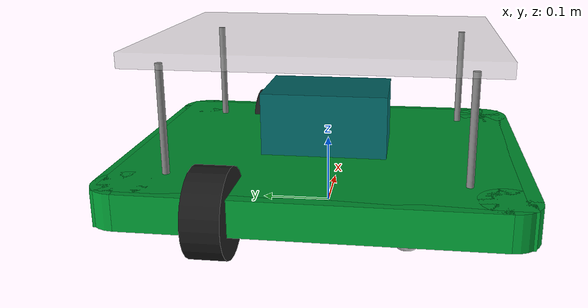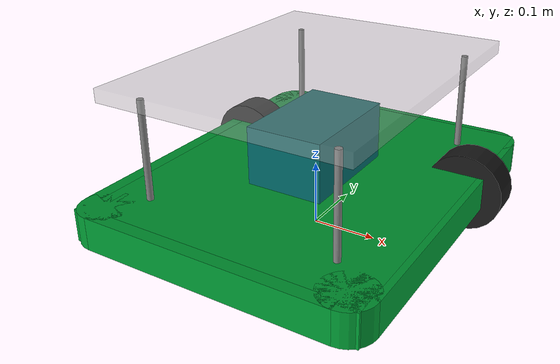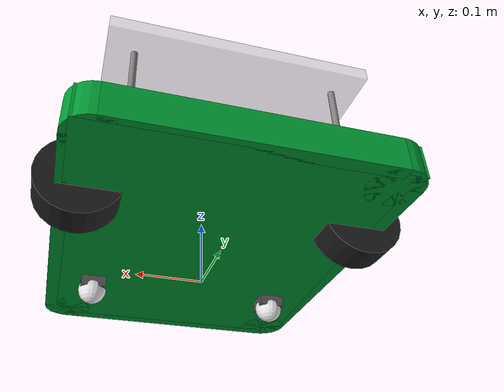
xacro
<?xml version="1.0"?>
<robot xmlns:xacro="http://www.ros.org/wiki/xacro" name="custom_robot">

  <xacro:include filename="$(find robot_simulation)/urdf/materials.xacro"/>
  <xacro:include filename="$(find robot_simulation)/urdf/robot_core.xacro"/>
  <xacro:include filename="$(find robot_simulation)/urdf/ros2_control.xacro"/>
  <xacro:include filename="$(find robot_simulation)/urdf/gazebo.xacro"/>

  <xacro:ros2_control/>
  <xacro:gazebo_plugins/>

</robot>

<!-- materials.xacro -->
<robot xmlns:xacro="http://www.ros.org/wiki/xacro">
  <material name="black">
    <color rgba="0.1 0.1 0.1 1.0"/>
  </material>
  <material name="white">
    <color rgba="0.9 0.9 0.9 1.0"/>
  </material>
  <material name="blue">
    <color rgba="0.0 0.2 0.8 1.0"/>
  </material>
  <material name="grey">
    <color rgba="0.5 0.5 0.5 1.0"/>
  </material>
  <material name="dark_grey">
    <color rgba="0.3 0.3 0.3 1.0"/>
  </material>
  <material name="green">
    <color rgba="0.0 0.6 0.2 1.0"/>
  </material>
  <material name="transparent">
    <color rgba="0.7 0.7 0.7 0.4"/>
  </material>
  <material name="battery_green">
    <color rgba="0.0 0.4 0.4 1.0"/>
  </material>
</robot>

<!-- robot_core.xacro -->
<robot xmlns:xacro="http://www.ros.org/wiki/xacro">

  <!-- Dimensions -->
  <xacro:property name="wheel_radius" value="0.06"/>
  <xacro:property name="wheel_width" value="0.05"/>
  <xacro:property name="wheel_track" value="0.40"/>    <!-- 40cm - ngang, truc X -->
  <xacro:property name="wheelbase" value="0.245"/>      <!-- 24.5cm - doc, truc Y -->
  <xacro:property name="caster_radius" value="0.0225"/>
  <xacro:property name="caster_track" value="0.31"/>    <!-- 31cm - ngang, truc X -->

  <xacro:property name="chassis_length" value="0.57"/>  <!-- 57cm - DOC, truc Y -->
  <xacro:property name="chassis_width" value="0.46"/>    <!-- 46cm - NGANG, truc X -->
  <xacro:property name="chassis_height" value="0.05"/>
  <xacro:property name="ground_clearance" value="0.04"/>
  <xacro:property name="equipment_height" value="0.26"/>
  <xacro:property name="corner_radius" value="0.04"/>

  <!-- Masses -->
  <xacro:property name="chassis_mass" value="5.0"/>
  <xacro:property name="wheel_mass" value="0.5"/>
  <xacro:property name="caster_mass" value="0.2"/>
  <xacro:property name="plate_mass" value="0.3"/>

  <!-- Inertia macros -->
  <xacro:macro name="box_inertia" params="m w h d">
    <inertial>
      <mass value="${m}"/>
      <inertia ixx="${m*(h*h + d*d)/12}" ixy="0.0" ixz="0.0"
               iyy="${m*(w*w + d*d)/12}" iyz="0.0"
               izz="${m*(w*w + h*h)/12}"/>
    </inertial>
  </xacro:macro>

  <xacro:macro name="cylinder_inertia" params="m r h">
    <inertial>
      <mass value="${m}"/>
      <inertia ixx="${m*(3*r*r + h*h)/12}" ixy="0.0" ixz="0.0"
               iyy="${m*(3*r*r + h*h)/12}" iyz="0.0"
               izz="${m*r*r/2}"/>
    </inertial>
  </xacro:macro>

  <xacro:macro name="sphere_inertia" params="m r">
    <inertial>
      <mass value="${m}"/>
      <inertia ixx="${2*m*r*r/5}" ixy="0.0" ixz="0.0"
               iyy="${2*m*r*r/5}" iyz="0.0"
               izz="${2*m*r*r/5}"/>
    </inertial>
  </xacro:macro>

  <!-- ================= BASE LINK ================= -->
  <!--
    Khung xe: chieu dai (57cm) theo truc Y, chieu rong (46cm) theo truc X
    4 goc bo tron
  -->
  <link name="base_link">

    <!-- THANH NGANG (truc X) - 2 thanh o trai va phai -->
    <!-- Thanh phai (+X) -->
    <visual>
      <origin xyz="${chassis_width/2 - 0.01} 0 ${ground_clearance + chassis_height/2}" rpy="0 0 0"/>
      <geometry>
        <box size="0.02 ${chassis_length - 2*corner_radius} ${chassis_height}"/>
      </geometry>
      <material name="green"/>
    </visual>
    <collision>
      <origin xyz="${chassis_width/2 - 0.01} 0 ${ground_clearance + chassis_height/2}" rpy="0 0 0"/>
      <geometry>
        <box size="0.02 ${chassis_length - 2*corner_radius} ${chassis_height}"/>
      </geometry>
    </collision>

    <!-- Thanh trai (-X) -->
    <visual>
      <origin xyz="${-chassis_width/2 + 0.01} 0 ${ground_clearance + chassis_height/2}" rpy="0 0 0"/>
      <geometry>
        <box size="0.02 ${chassis_length - 2*corner_radius} ${chassis_height}"/>
      </geometry>
      <material name="green"/>
    </visual>
    <collision>
      <origin xyz="${-chassis_width/2 + 0.01} 0 ${ground_clearance + chassis_height/2}" rpy="0 0 0"/>
      <geometry>
        <box size="0.02 ${chassis_length - 2*corner_radius} ${chassis_height}"/>
      </geometry>
    </collision>

    <!-- THANH DOC (truc Y) - 2 thanh truoc va sau -->
    <!-- Thanh truoc (+Y) -->
    <visual>
      <origin xyz="0 ${chassis_length/2 - 0.01} ${ground_clearance + chassis_height/2}" rpy="0 0 0"/>
      <geometry>
        <box size="${chassis_width - 2*corner_radius} 0.02 ${chassis_height}"/>
      </geometry>
      <material name="green"/>
    </visual>
    <collision>
      <origin xyz="0 ${chassis_length/2 - 0.01} ${ground_clearance + chassis_height/2}" rpy="0 0 0"/>
      <geometry>
        <box size="${chassis_width - 2*corner_radius} 0.02 ${chassis_height}"/>
      </geometry>
    </collision>

    <!-- Thanh sau (-Y) -->
    <visual>
      <origin xyz="0 ${-chassis_length/2 + 0.01} ${ground_clearance + chassis_height/2}" rpy="0 0 0"/>
      <geometry>
        <box size="${chassis_width - 2*corner_radius} 0.02 ${chassis_height}"/>
      </geometry>
      <material name="green"/>
    </visual>
    <collision>
      <origin xyz="0 ${-chassis_length/2 + 0.01} ${ground_clearance + chassis_height/2}" rpy="0 0 0"/>
      <geometry>
        <box size="${chassis_width - 2*corner_radius} 0.02 ${chassis_height}"/>
      </geometry>
    </collision>

    <!-- 4 GOC BO TRON (cylinder) -->
    <!-- Goc truoc-phai (+X, +Y) -->
    <visual>
      <origin xyz="${chassis_width/2 - corner_radius} ${chassis_length/2 - corner_radius} ${ground_clearance + chassis_height/2}" rpy="0 0 ${pi/4}"/>
      <geometry><cylinder radius="${corner_radius}" length="${chassis_height}"/></geometry>
      <material name="green"/>
    </visual>
    <collision>
      <origin xyz="${chassis_width/2 - corner_radius} ${chassis_length/2 - corner_radius} ${ground_clearance + chassis_height/2}" rpy="0 0 ${pi/4}"/>
      <geometry><cylinder radius="${corner_radius}" length="${chassis_height}"/></geometry>
    </collision>

    <!-- Goc truoc-trai (-X, +Y) -->
    <visual>
      <origin xyz="${-chassis_width/2 + corner_radius} ${chassis_length/2 - corner_radius} ${ground_clearance + chassis_height/2}" rpy="0 0 ${-pi/4}"/>
      <geometry><cylinder radius="${corner_radius}" length="${chassis_height}"/></geometry>
      <material name="green"/>
    </visual>
    <collision>
      <origin xyz="${-chassis_width/2 + corner_radius} ${chassis_length/2 - corner_radius} ${ground_clearance + chassis_height/2}" rpy="0 0 ${-pi/4}"/>
      <geometry><cylinder radius="${corner_radius}" length="${chassis_height}"/></geometry>
    </collision>

    <!-- Goc sau-phai (+X, -Y) -->
    <visual>
      <origin xyz="${chassis_width/2 - corner_radius} ${-chassis_length/2 + corner_radius} ${ground_clearance + chassis_height/2}" rpy="0 0 ${3*pi/4}"/>
      <geometry><cylinder radius="${corner_radius}" length="${chassis_height}"/></geometry>
      <material name="green"/>
    </visual>
    <collision>
      <origin xyz="${chassis_width/2 - corner_radius} ${-chassis_length/2 + corner_radius} ${ground_clearance + chassis_height/2}" rpy="0 0 ${3*pi/4}"/>
      <geometry><cylinder radius="${corner_radius}" length="${chassis_height}"/></geometry>
    </collision>

    <!-- Goc sau-trai (-X, -Y) -->
    <visual>
      <origin xyz="${-chassis_width/2 + corner_radius} ${-chassis_length/2 + corner_radius} ${ground_clearance + chassis_height/2}" rpy="0 0 ${-3*pi/4}"/>
      <geometry><cylinder radius="${corner_radius}" length="${chassis_height}"/></geometry>
      <material name="green"/>
    </visual>
    <collision>
      <origin xyz="${-chassis_width/2 + corner_radius} ${-chassis_length/2 + corner_radius} ${ground_clearance + chassis_height/2}" rpy="0 0 ${-3*pi/4}"/>
      <geometry><cylinder radius="${corner_radius}" length="${chassis_height}"/></geometry>
    </collision>

    <!-- TAM KHUNG -->
    <visual>
      <origin xyz="0 0 ${ground_clearance + chassis_height/2}" rpy="0 0 0"/>
      <geometry>
        <box size="${chassis_width - 0.02} ${chassis_length - 0.02} ${chassis_height}"/>
      </geometry>
      <material name="green"/>
    </visual>
    <collision>
      <origin xyz="0 0 ${ground_clearance + chassis_height/2}" rpy="0 0 0"/>
      <geometry>
        <box size="${chassis_width - 0.02} ${chassis_length - 0.02} ${chassis_height}"/>
      </geometry>
    </collision>

    <xacro:box_inertia m="${chassis_mass}" w="${chassis_width}" h="${chassis_height}" d="${chassis_length}"/>
  </link>

  <!-- Battery -->
  <link name="battery_box">
    <visual>
      <origin xyz="0 0 ${ground_clearance + chassis_height + 0.045}" rpy="0 0 0"/>
      <geometry>
        <box size="0.12 0.18 0.09"/>
      </geometry>
      <material name="battery_green"/>
    </visual>
    <collision>
      <origin xyz="0 0 ${ground_clearance + chassis_height + 0.045}" rpy="0 0 0"/>
      <geometry>
        <box size="0.12 0.18 0.09"/>
      </geometry>
    </collision>
    <inertial>
      <mass value="2.0"/>
      <inertia ixx="0.01" ixy="0" ixz="0" iyy="0.01" iyz="0" izz="0.01"/>
    </inertial>
  </link>
  <joint name="battery_joint" type="fixed">
    <parent link="base_link"/>
    <child link="battery_box"/>
    <origin xyz="0 0 0" rpy="0 0 0"/>
  </joint>

  <!-- Top plate -->
  <link name="top_plate">
    <visual>
      <origin xyz="0 0 ${equipment_height - 0.01}" rpy="0 0 0"/>
      <geometry>
        <box size="0.38 0.48 0.02"/>
      </geometry>
      <material name="transparent"/>
    </visual>
    <collision>
      <origin xyz="0 0 ${equipment_height - 0.01}" rpy="0 0 0"/>
      <geometry>
        <box size="0.38 0.48 0.02"/>
      </geometry>
    </collision>
    <xacro:box_inertia m="${plate_mass}" w="0.38" h="0.02" d="0.48"/>
  </link>
  <joint name="top_plate_joint" type="fixed">
    <parent link="base_link"/>
    <child link="top_plate"/>
    <origin xyz="0 0 0" rpy="0 0 0"/>
  </joint>

  <!-- Standoffs -->
  <xacro:macro name="standoff" params="x y z">
    <link name="standoff_${x}_${y}">
      <visual>
        <origin xyz="${x} ${y} ${z}" rpy="0 0 0"/>
        <geometry>
          <cylinder radius="0.005" length="${equipment_height - ground_clearance - chassis_height - 0.02}"/>
        </geometry>
        <material name="grey"/>
      </visual>
    </link>
    <joint name="standoff_joint_${x}_${y}" type="fixed">
      <parent link="base_link"/>
      <child link="standoff_${x}_${y}"/>
      <origin xyz="0 0 0" rpy="0 0 0"/>
    </joint>
  </xacro:macro>

  <xacro:standoff x="0.15" y="0.20" z="${ground_clearance + chassis_height + (equipment_height - ground_clearance - chassis_height)/2 - 0.01}"/>
  <xacro:standoff x="0.15" y="-0.20" z="${ground_clearance + chassis_height + (equipment_height - ground_clearance - chassis_height)/2 - 0.01}"/>
  <xacro:standoff x="-0.15" y="0.20" z="${ground_clearance + chassis_height + (equipment_height - ground_clearance - chassis_height)/2 - 0.01}"/>
  <xacro:standoff x="-0.15" y="-0.20" z="${ground_clearance + chassis_height + (equipment_height - ground_clearance - chassis_height)/2 - 0.01}"/>

  <!-- ================= MAIN WHEELS (Front = +Y) ================= -->
  <xacro:macro name="main_wheel" params="prefix x y">
    <link name="${prefix}_wheel_link">
      <visual>
        <geometry>
          <cylinder radius="${wheel_radius}" length="${wheel_width}"/>
        </geometry>
        <material name="black"/>
        <origin xyz="0 0 0" rpy="${pi/2} 0 0"/>
      </visual>
      <collision>
        <geometry>
          <cylinder radius="${wheel_radius}" length="${wheel_width}"/>
        </geometry>
        <origin xyz="0 0 0" rpy="${pi/2} 0 0"/>
      </collision>
      <xacro:cylinder_inertia m="${wheel_mass}" r="${wheel_radius}" h="${wheel_width}"/>
    </link>

    <joint name="${prefix}_wheel_joint" type="continuous">
      <parent link="base_link"/>
      <child link="${prefix}_wheel_link"/>
      <origin xyz="${x} ${y} ${wheel_radius}" rpy="0 0 0"/>
      <axis xyz="0 1 0"/>
    </joint>
  </xacro:macro>

  <!-- 2 banh chinh: nam o 2 ben (truc X), phia truoc (+Y) -->
  <!-- wheel_track = 40cm = khoang cach ngang (truc X) -->
  <xacro:main_wheel prefix="front_left" x="${wheel_track/2}" y="${wheelbase/2}"/>
  <xacro:main_wheel prefix="front_right" x="${-wheel_track/2}" y="${wheelbase/2}"/>

  <!-- ================= CASTER WHEELS (Rear = -Y) ================= -->
  <xacro:macro name="caster_wheel" params="prefix x y">
    <link name="${prefix}_caster_mount_link">
      <visual>
        <geometry>
          <box size="0.04 0.04 0.02"/>
        </geometry>
        <material name="dark_grey"/>
      </visual>
      <collision>
        <geometry>
          <box size="0.04 0.04 0.02"/>
        </geometry>
      </collision>
      <inertial>
        <mass value="0.05"/>
        <inertia ixx="0.00001" ixy="0" ixz="0" iyy="0.00001" iyz="0" izz="0.00001"/>
      </inertial>
    </link>

    <joint name="${prefix}_caster_mount_joint" type="continuous">
      <parent link="base_link"/>
      <child link="${prefix}_caster_mount_link"/>
      <origin xyz="${x} ${y} ${caster_radius + 0.01}" rpy="0 0 0"/>
      <axis xyz="0 0 1"/>
    </joint>

    <link name="${prefix}_caster_wheel_link">
      <visual>
        <geometry>
          <sphere radius="${caster_radius}"/>
        </geometry>
        <material name="white"/>
      </visual>
      <collision>
        <geometry>
          <sphere radius="${caster_radius}"/>
        </geometry>
      </collision>
      <xacro:sphere_inertia m="${caster_mass}" r="${caster_radius}"/>
    </link>

    <joint name="${prefix}_caster_wheel_joint" type="continuous">
      <parent link="${prefix}_caster_mount_link"/>
      <child link="${prefix}_caster_wheel_link"/>
      <origin xyz="0 0 -0.01" rpy="0 0 0"/>
      <axis xyz="0 1 0"/>
    </joint>
  </xacro:macro>

  <!-- 2 banh nho o phia sau (-Y) -->
  <!-- caster_track = 31cm = khoang cach ngang (truc X) -->
  <xacro:caster_wheel prefix="rear_left" x="${caster_track/2}" y="${-wheelbase/2}"/>
  <xacro:caster_wheel prefix="rear_right" x="${-caster_track/2}" y="${-wheelbase/2}"/>

</robot>
